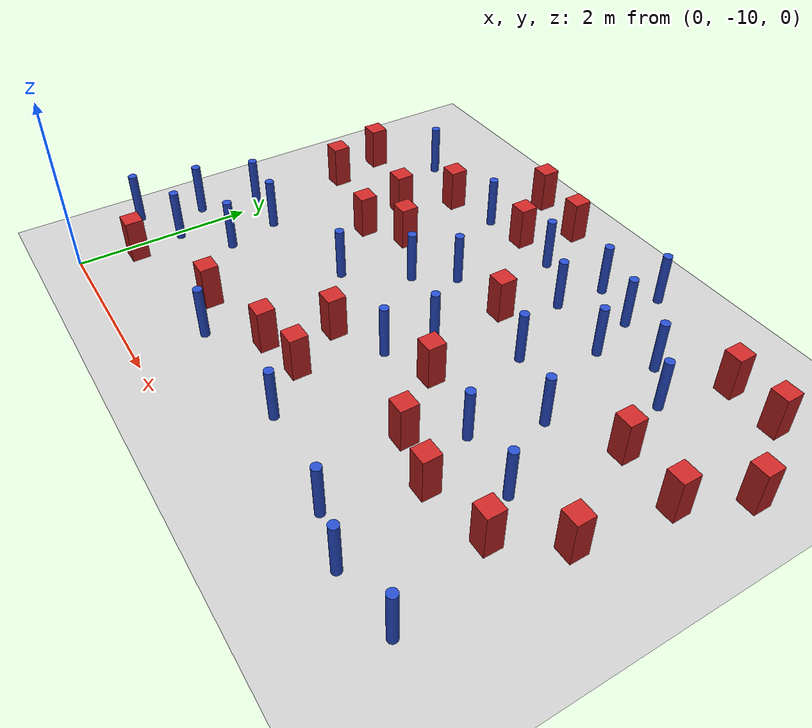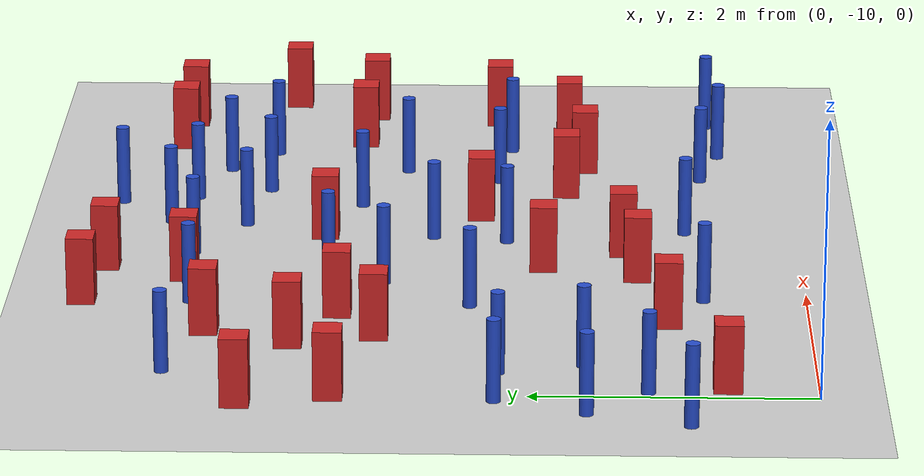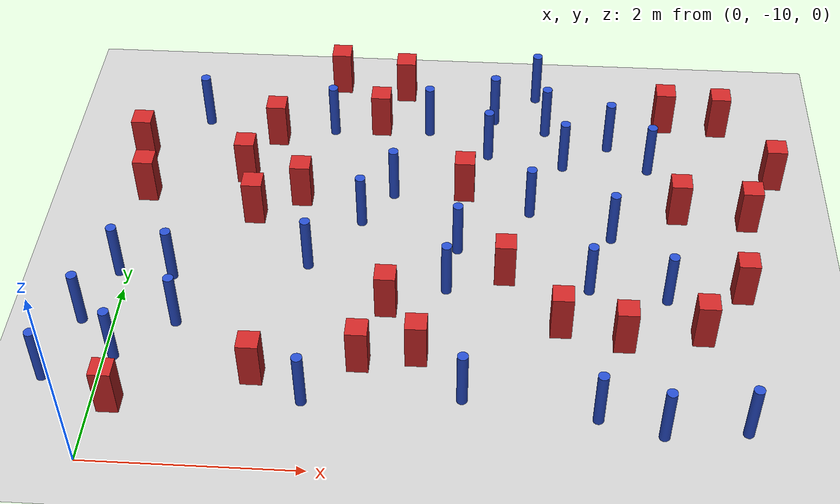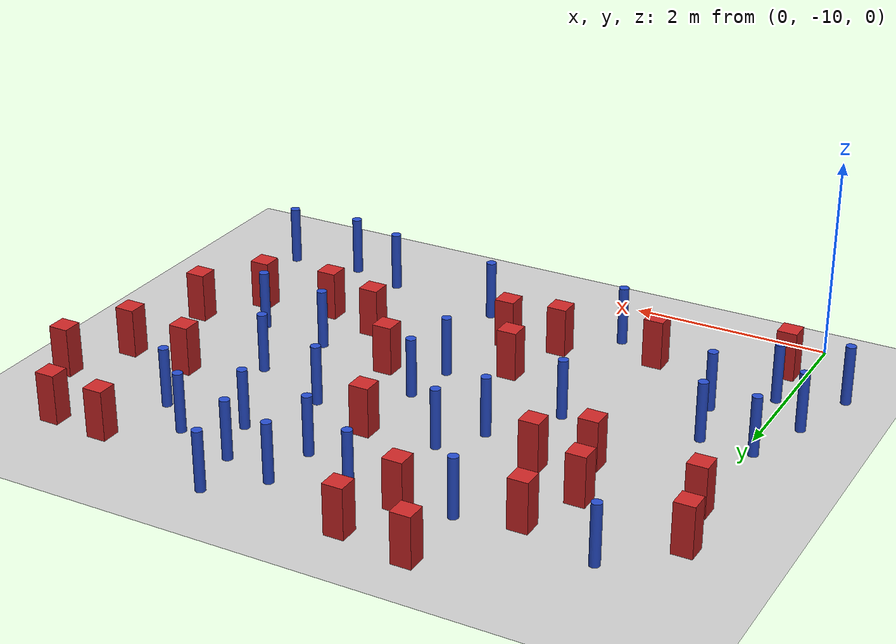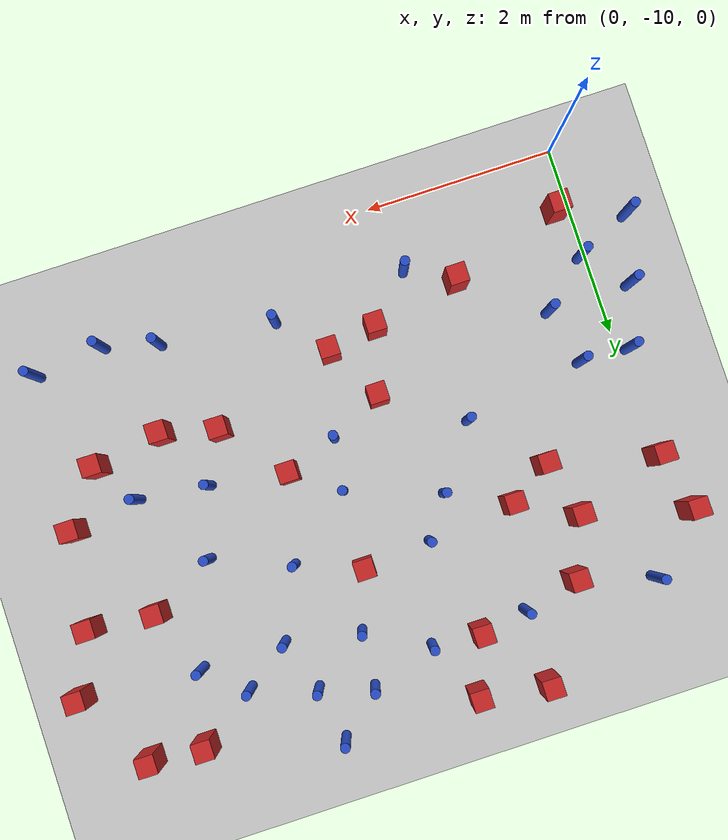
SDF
<sdf version="1.6">
 <world name="default">
  <model name="ground_plane">
   <static>1</static>
   <link name="link">
    <collision name="collision">
     <geometry><plane><normal>0 0 1</normal><size>100 100</size></plane></geometry>
     <surface><friction><ode><mu>100</mu><mu2>50</mu2></ode></friction></surface>
    </collision>
    <visual name="visual">
     <cast_shadows>0</cast_shadows>
     <geometry><plane><normal>0 0 1</normal><size>100 100</size></plane></geometry>
     <material>
      <ambient>1.0 1.0 1.0 1.0</ambient>
      <diffuse>0.8 0.8 0.8 1.0</diffuse>
      <specular>0.01 0.01 0.01 1.000000</specular>
     </material>
    </visual>
   </link>
  </model>
  <model name="square_post_obstacle17">
   <static>true</static>
   <pose>4.15785183296 -8.27256191377 1.91545236811e-07 -7.35059704564e-06 1.12565212e-07 2.39332434364e-05</pose>
   <link name="link">
    <pose>0 0 0.25 0 -0 0</pose>
    <inertial>
     <mass>100</mass>
     <inertia>
      <ixx>0.166667</ixx>
      <ixy>0</ixy>
      <ixz>0</ixz>
      <iyy>0.166667</iyy>
      <iyz>0</iyz>
      <izz>0.166667</izz>
     </inertia>
    </inertial>
    <collision name="collision"><geometry><box><size>.2 .2 .5</size></box></geometry></collision>
    <visual name="visual">
     <geometry><box><size>.2 .2 .5</size></box></geometry>
     <material>
      <script><name>Gazebo/Red</name><uri>file://media/materials/scripts/gazebo.material</uri></script>
     </material>
    </visual>
   </link>
  </model>
  <model name="square_post_obstacle24">
   <static>true</static>
   <pose>2.48874892233 -4.89453940041 1.91545236811e-07 -7.35059704564e-06 1.12565212e-07 2.39332434364e-05</pose>
   <link name="link">
    <pose>0 0 0.25 0 -0 0</pose>
    <inertial>
     <mass>100</mass>
     <inertia>
      <ixx>0.166667</ixx>
      <ixy>0</ixy>
      <ixz>0</ixz>
      <iyy>0.166667</iyy>
      <iyz>0</iyz>
      <izz>0.166667</izz>
     </inertia>
    </inertial>
    <collision name="collision"><geometry><box><size>.2 .2 .5</size></box></geometry></collision>
    <visual name="visual">
     <geometry><box><size>.2 .2 .5</size></box></geometry>
     <material>
      <script><name>Gazebo/Red</name><uri>file://media/materials/scripts/gazebo.material</uri></script>
     </material>
    </visual>
   </link>
  </model>
  <model name="pole_obstacle21">
   <static>true</static>
   <pose>3.2821513019 -9.15559063954 7.38925637345e-09 -8.47170692793e-08 1.24976764408e-08 -1.74513093041e-07</pose>
   <link name="link">
    <pose>0 0 0.3 0 -0 0</pose>
    <inertial>
     <mass>1</mass>
     <inertia><ixx>0.145833</ixx><ixy>0</ixy><ixz>0</ixz><iyy>0.145833</iyy><iyz>0</iyz><izz>0.125</izz></inertia>
    </inertial>
    <collision name="collision">
     <geometry><cylinder><radius>0.05</radius><length>.6</length></cylinder></geometry>
    </collision>
    <visual name="visual">
     <geometry><cylinder><radius>0.05</radius><length>.6</length></cylinder></geometry>
     <material>
      <script><name>Gazebo/Blue</name><uri>file://media/materials/scripts/gazebo.material</uri></script>
     </material>
    </visual>
   </link>
  </model>
  <model name="pole_obstacle22">
   <static>true</static>
   <pose>3.85461852948 -6.72539275594 7.38925637345e-09 -8.47170692798e-08 1.24976765033e-08 -1.74513093019e-07</pose>
   <link name="link">
    <pose>0 0 0.3 0 -0 0</pose>
    <inertial>
     <mass>1</mass>
     <inertia><ixx>0.145833</ixx><ixy>0</ixy><ixz>0</ixz><iyy>0.145833</iyy><iyz>0</iyz><izz>0.125</izz></inertia>
    </inertial>
    <collision name="collision">
     <geometry><cylinder><radius>0.05</radius><length>.6</length></cylinder></geometry>
    </collision>
    <visual name="visual">
     <geometry><cylinder><radius>0.05</radius><length>.6</length></cylinder></geometry>
     <material>
      <script><name>Gazebo/Blue</name><uri>file://media/materials/scripts/gazebo.material</uri></script>
     </material>
    </visual>
   </link>
  </model>
  <model name="pole_obstacle23">
   <static>true</static>
   <pose>1.71958289822 -7.57706437293 7.38925637345e-09 -8.47170692799e-08 1.24976765033e-08 -1.74513093018e-07</pose>
   <link name="link">
    <pose>0 0 0.3 0 -0 0</pose>
    <inertial>
     <mass>1</mass>
     <inertia><ixx>0.145833</ixx><ixy>0</ixy><ixz>0</ixz><iyy>0.145833</iyy><iyz>0</iyz><izz>0.125</izz></inertia>
    </inertial>
    <collision name="collision">
     <geometry><cylinder><radius>0.05</radius><length>.6</length></cylinder></geometry>
    </collision>
    <visual name="visual">
     <geometry><cylinder><radius>0.05</radius><length>.6</length></cylinder></geometry>
     <material>
      <script><name>Gazebo/Blue</name><uri>file://media/materials/scripts/gazebo.material</uri></script>
     </material>
    </visual>
   </link>
  </model>
  <model name="square_post_obstacle33">
   <static>true</static>
   <pose>5.46833458909 -8.29814705142 1.91545236811e-07 -7.35059704564e-06 1.12565212e-07 2.39332434364e-05</pose>
   <link name="link">
    <pose>0 0 0.25 0 -0 0</pose>
    <inertial>
     <mass>100</mass>
     <inertia>
      <ixx>0.166667</ixx>
      <ixy>0</ixy>
      <ixz>0</ixz>
      <iyy>0.166667</iyy>
      <iyz>0</iyz>
      <izz>0.166667</izz>
     </inertia>
    </inertial>
    <collision name="collision"><geometry><box><size>.2 .2 .5</size></box></geometry></collision>
    <visual name="visual">
     <geometry><box><size>.2 .2 .5</size></box></geometry>
     <material>
      <script><name>Gazebo/Red</name><uri>file://media/materials/scripts/gazebo.material</uri></script>
     </material>
    </visual>
   </link>
  </model>
  <model name="square_post_obstacle34">
   <static>true</static>
   <pose>1.18981005946 -5.70784908459 1.91545236811e-07 -7.35059704564e-06 1.12565212e-07 2.39332434364e-05</pose>
   <link name="link">
    <pose>0 0 0.25 0 -0 0</pose>
    <inertial>
     <mass>100</mass>
     <inertia>
      <ixx>0.166667</ixx>
      <ixy>0</ixy>
      <ixz>0</ixz>
      <iyy>0.166667</iyy>
      <iyz>0</iyz>
      <izz>0.166667</izz>
     </inertia>
    </inertial>
    <collision name="collision"><geometry><box><size>.2 .2 .5</size></box></geometry></collision>
    <visual name="visual">
     <geometry><box><size>.2 .2 .5</size></box></geometry>
     <material>
      <script><name>Gazebo/Red</name><uri>file://media/materials/scripts/gazebo.material</uri></script>
     </material>
    </visual>
   </link>
  </model>
  <model name="pole_obstacle32">
   <static>true</static>
   <pose>3.07451718425 -7.82963880934 7.38925637345e-09 -8.47170692798e-08 1.24976765033e-08 -1.74513093019e-07</pose>
   <link name="link">
    <pose>0 0 0.3 0 -0 0</pose>
    <inertial>
     <mass>1</mass>
     <inertia><ixx>0.145833</ixx><ixy>0</ixy><ixz>0</ixz><iyy>0.145833</iyy><iyz>0</iyz><izz>0.125</izz></inertia>
    </inertial>
    <collision name="collision">
     <geometry><cylinder><radius>0.05</radius><length>.6</length></cylinder></geometry>
    </collision>
    <visual name="visual">
     <geometry><cylinder><radius>0.05</radius><length>.6</length></cylinder></geometry>
     <material>
      <script><name>Gazebo/Blue</name><uri>file://media/materials/scripts/gazebo.material</uri></script>
     </material>
    </visual>
   </link>
  </model>
  <model name="pole_obstacle44">
   <static>true</static>
   <pose>0.0861160558332 -8.82764302675 7.38925637345e-09 -8.47170692797e-08 1.24976764742e-08 -1.74513093035e-07</pose>
   <link name="link">
    <pose>0 0 0.3 0 -0 0</pose>
    <inertial>
     <mass>1</mass>
     <inertia><ixx>0.145833</ixx><ixy>0</ixy><ixz>0</ixz><iyy>0.145833</iyy><iyz>0</iyz><izz>0.125</izz></inertia>
    </inertial>
    <collision name="collision">
     <geometry><cylinder><radius>0.05</radius><length>.6</length></cylinder></geometry>
    </collision>
    <visual name="visual">
     <geometry><cylinder><radius>0.05</radius><length>.6</length></cylinder></geometry>
     <material>
      <script><name>Gazebo/Blue</name><uri>file://media/materials/scripts/gazebo.material</uri></script>
     </material>
    </visual>
   </link>
  </model>
  <model name="pole_obstacle45">
   <static>true</static>
   <pose>0.434307333481 -7.79270988588 7.38925637345e-09 -8.471706928e-08 1.24976765079e-08 -1.74513093015e-07</pose>
   <link name="link">
    <pose>0 0 0.3 0 -0 0</pose>
    <inertial>
     <mass>1</mass>
     <inertia><ixx>0.145833</ixx><ixy>0</ixy><ixz>0</ixz><iyy>0.145833</iyy><iyz>0</iyz><izz>0.125</izz></inertia>
    </inertial>
    <collision name="collision">
     <geometry><cylinder><radius>0.05</radius><length>.6</length></cylinder></geometry>
    </collision>
    <visual name="visual">
     <geometry><cylinder><radius>0.05</radius><length>.6</length></cylinder></geometry>
     <material>
      <script><name>Gazebo/Blue</name><uri>file://media/materials/scripts/gazebo.material</uri></script>
     </material>
    </visual>
   </link>
  </model>
  <model name="square_post_obstacle45">
   <static>true</static>
   <pose>4.73870761755 -8.41685095977 1.91545236811e-07 -7.35059704564e-06 1.12565212e-07 2.39332434364e-05</pose>
   <link name="link">
    <pose>0 0 0.25 0 -0 0</pose>
    <inertial>
     <mass>100</mass>
     <inertia>
      <ixx>0.166667</ixx>
      <ixy>0</ixy>
      <ixz>0</ixz>
      <iyy>0.166667</iyy>
      <iyz>0</iyz>
      <izz>0.166667</izz>
     </inertia>
    </inertial>
    <collision name="collision"><geometry><box><size>.2 .2 .5</size></box></geometry></collision>
    <visual name="visual">
     <geometry><box><size>.2 .2 .5</size></box></geometry>
     <material>
      <script><name>Gazebo/Red</name><uri>file://media/materials/scripts/gazebo.material</uri></script>
     </material>
    </visual>
   </link>
  </model>
  <model name="pole_obstacle49">
   <static>true</static>
   <pose>3.15505255902 -7.28465261312 7.38925637345e-09 -8.47170692798e-08 1.24976765033e-08 -1.74513093019e-07</pose>
   <link name="link">
    <pose>0 0 0.3 0 -0 0</pose>
    <inertial>
     <mass>1</mass>
     <inertia><ixx>0.145833</ixx><ixy>0</ixy><ixz>0</ixz><iyy>0.145833</iyy><iyz>0</iyz><izz>0.125</izz></inertia>
    </inertial>
    <collision name="collision">
     <geometry><cylinder><radius>0.05</radius><length>.6</length></cylinder></geometry>
    </collision>
    <visual name="visual">
     <geometry><cylinder><radius>0.05</radius><length>.6</length></cylinder></geometry>
     <material>
      <script><name>Gazebo/Blue</name><uri>file://media/materials/scripts/gazebo.material</uri></script>
     </material>
    </visual>
   </link>
  </model>
  <model name="square_post_obstacle52">
   <static>true</static>
   <pose>6.31727761638 -6.11788817503 1.91545236811e-07 -7.35059704564e-06 1.12565212e-07 2.39332434364e-05</pose>
   <link name="link">
    <pose>0 0 0.25 0 -0 0</pose>
    <inertial>
     <mass>100</mass>
     <inertia>
      <ixx>0.166667</ixx>
      <ixy>0</ixy>
      <ixz>0</ixz>
      <iyy>0.166667</iyy>
      <iyz>0</iyz>
      <izz>0.166667</izz>
     </inertia>
    </inertial>
    <collision name="collision"><geometry><box><size>.2 .2 .5</size></box></geometry></collision>
    <visual name="visual">
     <geometry><box><size>.2 .2 .5</size></box></geometry>
     <material>
      <script><name>Gazebo/Red</name><uri>file://media/materials/scripts/gazebo.material</uri></script>
     </material>
    </visual>
   </link>
  </model>
  <model name="pole_obstacle54">
   <static>true</static>
   <pose>3.90100786367 -4.89600592577 7.38925637345e-09 -8.47170692798e-08 1.24976765033e-08 -1.74513093019e-07</pose>
   <link name="link">
    <pose>0 0 0.3 0 -0 0</pose>
    <inertial>
     <mass>1</mass>
     <inertia><ixx>0.145833</ixx><ixy>0</ixy><ixz>0</ixz><iyy>0.145833</iyy><iyz>0</iyz><izz>0.125</izz></inertia>
    </inertial>
    <collision name="collision">
     <geometry><cylinder><radius>0.05</radius><length>.6</length></cylinder></geometry>
    </collision>
    <visual name="visual">
     <geometry><cylinder><radius>0.05</radius><length>.6</length></cylinder></geometry>
     <material>
      <script><name>Gazebo/Blue</name><uri>file://media/materials/scripts/gazebo.material</uri></script>
     </material>
    </visual>
   </link>
  </model>
  <model name="square_post_obstacle60">
   <static>true</static>
   <pose>2.26597551009 -5.48836966018 1.91545236811e-07 -7.35059704564e-06 1.12565212e-07 2.39332434364e-05</pose>
   <link name="link">
    <pose>0 0 0.25 0 -0 0</pose>
    <inertial>
     <mass>100</mass>
     <inertia>
      <ixx>0.166667</ixx>
      <ixy>0</ixy>
      <ixz>0</ixz>
      <iyy>0.166667</iyy>
      <iyz>0</iyz>
      <izz>0.166667</izz>
     </inertia>
    </inertial>
    <collision name="collision"><geometry><box><size>.2 .2 .5</size></box></geometry></collision>
    <visual name="visual">
     <geometry><box><size>.2 .2 .5</size></box></geometry>
     <material>
      <script><name>Gazebo/Red</name><uri>file://media/materials/scripts/gazebo.material</uri></script>
     </material>
    </visual>
   </link>
  </model>
  <model name="pole_obstacle57">
   <static>true</static>
   <pose>4.18999094337 -6.00876247034 7.38925637345e-09 -8.47170692796e-08 1.24976764786e-08 -1.74513093032e-07</pose>
   <link name="link">
    <pose>0 0 0.3 0 -0 0</pose>
    <inertial>
     <mass>1</mass>
     <inertia><ixx>0.145833</ixx><ixy>0</ixy><ixz>0</ixz><iyy>0.145833</iyy><iyz>0</iyz><izz>0.125</izz></inertia>
    </inertial>
    <collision name="collision">
     <geometry><cylinder><radius>0.05</radius><length>.6</length></cylinder></geometry>
    </collision>
    <visual name="visual">
     <geometry><cylinder><radius>0.05</radius><length>.6</length></cylinder></geometry>
     <material>
      <script><name>Gazebo/Blue</name><uri>file://media/materials/scripts/gazebo.material</uri></script>
     </material>
    </visual>
   </link>
  </model>
  <model name="square_post_obstacle61">
   <static>true</static>
   <pose>-0.01868318585 -6.64363689225 1.91545236811e-07 -7.35059704564e-06 1.12565212e-07 2.39332434364e-05</pose>
   <link name="link">
    <pose>0 0 0.25 0 -0 0</pose>
    <inertial>
     <mass>100</mass>
     <inertia>
      <ixx>0.166667</ixx>
      <ixy>0</ixy>
      <ixz>0</ixz>
      <iyy>0.166667</iyy>
      <iyz>0</iyz>
      <izz>0.166667</izz>
     </inertia>
    </inertial>
    <collision name="collision"><geometry><box><size>.2 .2 .5</size></box></geometry></collision>
    <visual name="visual">
     <geometry><box><size>.2 .2 .5</size></box></geometry>
     <material>
      <script><name>Gazebo/Red</name><uri>file://media/materials/scripts/gazebo.material</uri></script>
     </material>
    </visual>
   </link>
  </model>
  <model name="pole_obstacle62">
   <static>true</static>
   <pose>5.78178929877 -9.38186354014 7.38925637345e-09 -8.471706928e-08 1.24976765081e-08 -1.74513093015e-07</pose>
   <link name="link">
    <pose>0 0 0.3 0 -0 0</pose>
    <inertial>
     <mass>1</mass>
     <inertia><ixx>0.145833</ixx><ixy>0</ixy><ixz>0</ixz><iyy>0.145833</iyy><iyz>0</iyz><izz>0.125</izz></inertia>
    </inertial>
    <collision name="collision">
     <geometry><cylinder><radius>0.05</radius><length>.6</length></cylinder></geometry>
    </collision>
    <visual name="visual">
     <geometry><cylinder><radius>0.05</radius><length>.6</length></cylinder></geometry>
     <material>
      <script><name>Gazebo/Blue</name><uri>file://media/materials/scripts/gazebo.material</uri></script>
     </material>
    </visual>
   </link>
  </model>
  <model name="pole_obstacle65">
   <static>true</static>
   <pose>4.66340418919 -7.04947778425 7.38925637345e-09 -8.47170692796e-08 1.24976764786e-08 -1.74513093032e-07</pose>
   <link name="link">
    <pose>0 0 0.3 0 -0 0</pose>
    <inertial>
     <mass>1</mass>
     <inertia><ixx>0.145833</ixx><ixy>0</ixy><ixz>0</ixz><iyy>0.145833</iyy><iyz>0</iyz><izz>0.125</izz></inertia>
    </inertial>
    <collision name="collision">
     <geometry><cylinder><radius>0.05</radius><length>.6</length></cylinder></geometry>
    </collision>
    <visual name="visual">
     <geometry><cylinder><radius>0.05</radius><length>.6</length></cylinder></geometry>
     <material>
      <script><name>Gazebo/Blue</name><uri>file://media/materials/scripts/gazebo.material</uri></script>
     </material>
    </visual>
   </link>
  </model>
  <model name="pole_obstacle83">
   <static>true</static>
   <pose>4.4836316088 -9.30578332304 7.38925637345e-09 -8.471706928e-08 1.24976765081e-08 -1.74513093015e-07</pose>
   <link name="link">
    <pose>0 0 0.3 0 -0 0</pose>
    <inertial>
     <mass>1</mass>
     <inertia><ixx>0.145833</ixx><ixy>0</ixy><ixz>0</ixz><iyy>0.145833</iyy><iyz>0</iyz><izz>0.125</izz></inertia>
    </inertial>
    <collision name="collision">
     <geometry><cylinder><radius>0.05</radius><length>.6</length></cylinder></geometry>
    </collision>
    <visual name="visual">
     <geometry><cylinder><radius>0.05</radius><length>.6</length></cylinder></geometry>
     <material>
      <script><name>Gazebo/Blue</name><uri>file://media/materials/scripts/gazebo.material</uri></script>
     </material>
    </visual>
   </link>
  </model>
  <model name="pole_obstacle96">
   <static>true</static>
   <pose>1.76932864099 -5.56148229161 7.38925637345e-09 -8.47170692799e-08 1.24976765033e-08 -1.74513093018e-07</pose>
   <link name="link">
    <pose>0 0 0.3 0 -0 0</pose>
    <inertial>
     <mass>1</mass>
     <inertia><ixx>0.145833</ixx><ixy>0</ixy><ixz>0</ixz><iyy>0.145833</iyy><iyz>0</iyz><izz>0.125</izz></inertia>
    </inertial>
    <collision name="collision">
     <geometry><cylinder><radius>0.05</radius><length>.6</length></cylinder></geometry>
    </collision>
    <visual name="visual">
     <geometry><cylinder><radius>0.05</radius><length>.6</length></cylinder></geometry>
     <material>
      <script><name>Gazebo/Blue</name><uri>file://media/materials/scripts/gazebo.material</uri></script>
     </material>
    </visual>
   </link>
  </model>
  <model name="pole_obstacle100">
   <static>true</static>
   <pose>4.66208026343 -5.67378600935 7.38925637345e-09 -8.47170692796e-08 1.24976764786e-08 -1.74513093032e-07</pose>
   <link name="link">
    <pose>0 0 0.3 0 -0 0</pose>
    <inertial>
     <mass>1</mass>
     <inertia><ixx>0.145833</ixx><ixy>0</ixy><ixz>0</ixz><iyy>0.145833</iyy><iyz>0</iyz><izz>0.125</izz></inertia>
    </inertial>
    <collision name="collision">
     <geometry><cylinder><radius>0.05</radius><length>.6</length></cylinder></geometry>
    </collision>
    <visual name="visual">
     <geometry><cylinder><radius>0.05</radius><length>.6</length></cylinder></geometry>
     <material>
      <script><name>Gazebo/Blue</name><uri>file://media/materials/scripts/gazebo.material</uri></script>
     </material>
    </visual>
   </link>
  </model>
  <model name="square_post_obstacle88">
   <static>true</static>
   <pose>5.88040139301 -7.74595541153 1.91545236811e-07 -7.35059704564e-06 1.12565212e-07 2.39332434364e-05</pose>
   <link name="link">
    <pose>0 0 0.25 0 -0 0</pose>
    <inertial>
     <mass>100</mass>
     <inertia>
      <ixx>0.166667</ixx>
      <ixy>0</ixy>
      <ixz>0</ixz>
      <iyy>0.166667</iyy>
      <iyz>0</iyz>
      <izz>0.166667</izz>
     </inertia>
    </inertial>
    <collision name="collision"><geometry><box><size>.2 .2 .5</size></box></geometry></collision>
    <visual name="visual">
     <geometry><box><size>.2 .2 .5</size></box></geometry>
     <material>
      <script><name>Gazebo/Red</name><uri>file://media/materials/scripts/gazebo.material</uri></script>
     </material>
    </visual>
   </link>
  </model>
  <model name="square_post_obstacle91">
   <static>true</static>
   <pose>3.189183629 -6.47401037486 1.91545236811e-07 -7.35059704564e-06 1.12565212e-07 2.39332434364e-05</pose>
   <link name="link">
    <pose>0 0 0.25 0 -0 0</pose>
    <inertial>
     <mass>100</mass>
     <inertia>
      <ixx>0.166667</ixx>
      <ixy>0</ixy>
      <ixz>0</ixz>
      <iyy>0.166667</iyy>
      <iyz>0</iyz>
      <izz>0.166667</izz>
     </inertia>
    </inertial>
    <collision name="collision"><geometry><box><size>.2 .2 .5</size></box></geometry></collision>
    <visual name="visual">
     <geometry><box><size>.2 .2 .5</size></box></geometry>
     <material>
      <script><name>Gazebo/Red</name><uri>file://media/materials/scripts/gazebo.material</uri></script>
     </material>
    </visual>
   </link>
  </model>
  <model name="square_post_obstacle95">
   <static>true</static>
   <pose>1.38777817298 -8.98900119935 1.91545236811e-07 -7.35059704564e-06 1.12565212e-07 2.39332434364e-05</pose>
   <link name="link">
    <pose>0 0 0.25 0 -0 0</pose>
    <inertial>
     <mass>100</mass>
     <inertia>
      <ixx>0.166667</ixx>
      <ixy>0</ixy>
      <ixz>0</ixz>
      <iyy>0.166667</iyy>
      <iyz>0</iyz>
      <izz>0.166667</izz>
     </inertia>
    </inertial>
    <collision name="collision"><geometry><box><size>.2 .2 .5</size></box></geometry></collision>
    <visual name="visual">
     <geometry><box><size>.2 .2 .5</size></box></geometry>
     <material>
      <script><name>Gazebo/Red</name><uri>file://media/materials/scripts/gazebo.material</uri></script>
     </material>
    </visual>
   </link>
  </model>
  <model name="square_post_obstacle96">
   <static>true</static>
   <pose>2.84689971885 -8.68989378921 1.91545236811e-07 -7.35059704564e-06 1.12565212e-07 2.39332434364e-05</pose>
   <link name="link">
    <pose>0 0 0.25 0 -0 0</pose>
    <inertial>
     <mass>100</mass>
     <inertia>
      <ixx>0.166667</ixx>
      <ixy>0</ixy>
      <ixz>0</ixz>
      <iyy>0.166667</iyy>
      <iyz>0</iyz>
      <izz>0.166667</izz>
     </inertia>
    </inertial>
    <collision name="collision"><geometry><box><size>.2 .2 .5</size></box></geometry></collision>
    <visual name="visual">
     <geometry><box><size>.2 .2 .5</size></box></geometry>
     <material>
      <script><name>Gazebo/Red</name><uri>file://media/materials/scripts/gazebo.material</uri></script>
     </material>
    </visual>
   </link>
  </model>
  <model name="pole_obstacle110">
   <static>true</static>
   <pose>0.410652799768 -5.47015777811 7.38925637345e-09 -8.471706928e-08 1.24976765079e-08 -1.74513093015e-07</pose>
   <link name="link">
    <pose>0 0 0.3 0 -0 0</pose>
    <inertial>
     <mass>1</mass>
     <inertia><ixx>0.145833</ixx><ixy>0</ixy><ixz>0</ixz><iyy>0.145833</iyy><iyz>0</iyz><izz>0.125</izz></inertia>
    </inertial>
    <collision name="collision">
     <geometry><cylinder><radius>0.05</radius><length>.6</length></cylinder></geometry>
    </collision>
    <visual name="visual">
     <geometry><cylinder><radius>0.05</radius><length>.6</length></cylinder></geometry>
     <material>
      <script><name>Gazebo/Blue</name><uri>file://media/materials/scripts/gazebo.material</uri></script>
     </material>
    </visual>
   </link>
  </model>
  <model name="square_post_obstacle102">
   <static>true</static>
   <pose>6.01664708034 -6.75587740089 1.91545236811e-07 -7.35059704564e-06 1.12565212e-07 2.39332434364e-05</pose>
   <link name="link">
    <pose>0 0 0.25 0 -0 0</pose>
    <inertial>
     <mass>100</mass>
     <inertia>
      <ixx>0.166667</ixx>
      <ixy>0</ixy>
      <ixz>0</ixz>
      <iyy>0.166667</iyy>
      <iyz>0</iyz>
      <izz>0.166667</izz>
     </inertia>
    </inertial>
    <collision name="collision"><geometry><box><size>.2 .2 .5</size></box></geometry></collision>
    <visual name="visual">
     <geometry><box><size>.2 .2 .5</size></box></geometry>
     <material>
      <script><name>Gazebo/Red</name><uri>file://media/materials/scripts/gazebo.material</uri></script>
     </material>
    </visual>
   </link>
  </model>
  <model name="square_post_obstacle105">
   <static>true</static>
   <pose>2.52196008538 -8.10216828916 1.91545236811e-07 -7.35059704564e-06 1.12565212e-07 2.39332434364e-05</pose>
   <link name="link">
    <pose>0 0 0.25 0 -0 0</pose>
    <inertial>
     <mass>100</mass>
     <inertia>
      <ixx>0.166667</ixx>
      <ixy>0</ixy>
      <ixz>0</ixz>
      <iyy>0.166667</iyy>
      <iyz>0</iyz>
      <izz>0.166667</izz>
     </inertia>
    </inertial>
    <collision name="collision"><geometry><box><size>.2 .2 .5</size></box></geometry></collision>
    <visual name="visual">
     <geometry><box><size>.2 .2 .5</size></box></geometry>
     <material>
      <script><name>Gazebo/Red</name><uri>file://media/materials/scripts/gazebo.material</uri></script>
     </material>
    </visual>
   </link>
  </model>
  <model name="pole_obstacle127">
   <static>true</static>
   <pose>2.47527180235 -6.52860284117 7.38925637345e-09 -8.47170692798e-08 1.24976765033e-08 -1.74513093019e-07</pose>
   <link name="link">
    <pose>0 0 0.3 0 -0 0</pose>
    <inertial>
     <mass>1</mass>
     <inertia><ixx>0.145833</ixx><ixy>0</ixy><ixz>0</ixz><iyy>0.145833</iyy><iyz>0</iyz><izz>0.125</izz></inertia>
    </inertial>
    <collision name="collision">
     <geometry><cylinder><radius>0.05</radius><length>.6</length></cylinder></geometry>
    </collision>
    <visual name="visual">
     <geometry><cylinder><radius>0.05</radius><length>.6</length></cylinder></geometry>
     <material>
      <script><name>Gazebo/Blue</name><uri>file://media/materials/scripts/gazebo.material</uri></script>
     </material>
    </visual>
   </link>
  </model>
  <model name="pole_obstacle129">
   <static>true</static>
   <pose>-0.0849867156135 -7.77132868973 7.38925637345e-09 -8.47170692799e-08 1.24976765047e-08 -1.74513093018e-07</pose>
   <link name="link">
    <pose>0 0 0.3 0 -0 0</pose>
    <inertial>
     <mass>1</mass>
     <inertia><ixx>0.145833</ixx><ixy>0</ixy><ixz>0</ixz><iyy>0.145833</iyy><iyz>0</iyz><izz>0.125</izz></inertia>
    </inertial>
    <collision name="collision">
     <geometry><cylinder><radius>0.05</radius><length>.6</length></cylinder></geometry>
    </collision>
    <visual name="visual">
     <geometry><cylinder><radius>0.05</radius><length>.6</length></cylinder></geometry>
     <material>
      <script><name>Gazebo/Blue</name><uri>file://media/materials/scripts/gazebo.material</uri></script>
     </material>
    </visual>
   </link>
  </model>
  <model name="pole_obstacle131">
   <static>true</static>
   <pose>2.18354928799 -6.94450361111 7.38925637345e-09 -8.47170692798e-08 1.24976765033e-08 -1.74513093019e-07</pose>
   <link name="link">
    <pose>0 0 0.3 0 -0 0</pose>
    <inertial>
     <mass>1</mass>
     <inertia><ixx>0.145833</ixx><ixy>0</ixy><ixz>0</ixz><iyy>0.145833</iyy><iyz>0</iyz><izz>0.125</izz></inertia>
    </inertial>
    <collision name="collision">
     <geometry><cylinder><radius>0.05</radius><length>.6</length></cylinder></geometry>
    </collision>
    <visual name="visual">
     <geometry><cylinder><radius>0.05</radius><length>.6</length></cylinder></geometry>
     <material>
      <script><name>Gazebo/Blue</name><uri>file://media/materials/scripts/gazebo.material</uri></script>
     </material>
    </visual>
   </link>
  </model>
  <model name="pole_obstacle132">
   <static>true</static>
   <pose>4.00531018259 -5.46140039815 7.38925637345e-09 -8.47170692796e-08 1.24976764793e-08 -1.74513093032e-07</pose>
   <link name="link">
    <pose>0 0 0.3 0 -0 0</pose>
    <inertial>
     <mass>1</mass>
     <inertia><ixx>0.145833</ixx><ixy>0</ixy><ixz>0</ixz><iyy>0.145833</iyy><iyz>0</iyz><izz>0.125</izz></inertia>
    </inertial>
    <collision name="collision">
     <geometry><cylinder><radius>0.05</radius><length>.6</length></cylinder></geometry>
    </collision>
    <visual name="visual">
     <geometry><cylinder><radius>0.05</radius><length>.6</length></cylinder></geometry>
     <material>
      <script><name>Gazebo/Blue</name><uri>file://media/materials/scripts/gazebo.material</uri></script>
     </material>
    </visual>
   </link>
  </model>
  <model name="square_post_obstacle141">
   <static>true</static>
   <pose>-0.16210854065 -6.01844192854 1.91545236811e-07 -7.35059704564e-06 1.12565212e-07 2.39332434364e-05</pose>
   <link name="link">
    <pose>0 0 0.25 0 -0 0</pose>
    <inertial>
     <mass>100</mass>
     <inertia>
      <ixx>0.166667</ixx>
      <ixy>0</ixy>
      <ixz>0</ixz>
      <iyy>0.166667</iyy>
      <iyz>0</iyz>
      <izz>0.166667</izz>
     </inertia>
    </inertial>
    <collision name="collision"><geometry><box><size>.2 .2 .5</size></box></geometry></collision>
    <visual name="visual">
     <geometry><box><size>.2 .2 .5</size></box></geometry>
     <material>
      <script><name>Gazebo/Red</name><uri>file://media/materials/scripts/gazebo.material</uri></script>
     </material>
    </visual>
   </link>
  </model>
  <model name="square_post_obstacle148">
   <static>true</static>
   <pose>5.25422848731 -5.27414157081 1.91545236811e-07 -7.35059704564e-06 1.12565212e-07 2.39332434364e-05</pose>
   <link name="link">
    <pose>0 0 0.25 0 -0 0</pose>
    <inertial>
     <mass>100</mass>
     <inertia>
      <ixx>0.166667</ixx>
      <ixy>0</ixy>
      <ixz>0</ixz>
      <iyy>0.166667</iyy>
      <iyz>0</iyz>
      <izz>0.166667</izz>
     </inertia>
    </inertial>
    <collision name="collision"><geometry><box><size>.2 .2 .5</size></box></geometry></collision>
    <visual name="visual">
     <geometry><box><size>.2 .2 .5</size></box></geometry>
     <material>
      <script><name>Gazebo/Red</name><uri>file://media/materials/scripts/gazebo.material</uri></script>
     </material>
    </visual>
   </link>
  </model>
  <model name="square_post_obstacle150">
   <static>true</static>
   <pose>5.82593569777 -5.31016737916 1.91545236811e-07 -7.35059704564e-06 1.12565212e-07 2.39332434364e-05</pose>
   <link name="link">
    <pose>0 0 0.25 0 -0 0</pose>
    <inertial>
     <mass>100</mass>
     <inertia>
      <ixx>0.166667</ixx>
      <ixy>0</ixy>
      <ixz>0</ixz>
      <iyy>0.166667</iyy>
      <iyz>0</iyz>
      <izz>0.166667</izz>
     </inertia>
    </inertial>
    <collision name="collision"><geometry><box><size>.2 .2 .5</size></box></geometry></collision>
    <visual name="visual">
     <geometry><box><size>.2 .2 .5</size></box></geometry>
     <material>
      <script><name>Gazebo/Red</name><uri>file://media/materials/scripts/gazebo.material</uri></script>
     </material>
    </visual>
   </link>
  </model>
  <model name="square_post_obstacle153">
   <static>true</static>
   <pose>2.32500937096 -8.78696110378 1.91545236811e-07 -7.35059704564e-06 1.12565212e-07 2.39332434364e-05</pose>
   <link name="link">
    <pose>0 0 0.25 0 -0 0</pose>
    <inertial>
     <mass>100</mass>
     <inertia>
      <ixx>0.166667</ixx>
      <ixy>0</ixy>
      <ixz>0</ixz>
      <iyy>0.166667</iyy>
      <iyz>0</iyz>
      <izz>0.166667</izz>
     </inertia>
    </inertial>
    <collision name="collision"><geometry><box><size>.2 .2 .5</size></box></geometry></collision>
    <visual name="visual">
     <geometry><box><size>.2 .2 .5</size></box></geometry>
     <material>
      <script><name>Gazebo/Red</name><uri>file://media/materials/scripts/gazebo.material</uri></script>
     </material>
    </visual>
   </link>
  </model>
  <model name="pole_obstacle160">
   <static>true</static>
   <pose>5.05029170669 -9.45666490894 7.38925637345e-09 -8.471706928e-08 1.24976765081e-08 -1.74513093015e-07</pose>
   <link name="link">
    <pose>0 0 0.3 0 -0 0</pose>
    <inertial>
     <mass>1</mass>
     <inertia><ixx>0.145833</ixx><ixy>0</ixy><ixz>0</ixz><iyy>0.145833</iyy><iyz>0</iyz><izz>0.125</izz></inertia>
    </inertial>
    <collision name="collision">
     <geometry><cylinder><radius>0.05</radius><length>.6</length></cylinder></geometry>
    </collision>
    <visual name="visual">
     <geometry><cylinder><radius>0.05</radius><length>.6</length></cylinder></geometry>
     <material>
      <script><name>Gazebo/Blue</name><uri>file://media/materials/scripts/gazebo.material</uri></script>
     </material>
    </visual>
   </link>
  </model>
  <model name="square_post_obstacle158">
   <static>true</static>
   <pose>5.32992251936 -6.6910341316 1.91545236811e-07 -7.35059704564e-06 1.12565212e-07 2.39332434364e-05</pose>
   <link name="link">
    <pose>0 0 0.25 0 -0 0</pose>
    <inertial>
     <mass>100</mass>
     <inertia>
      <ixx>0.166667</ixx>
      <ixy>0</ixy>
      <ixz>0</ixz>
      <iyy>0.166667</iyy>
      <iyz>0</iyz>
      <izz>0.166667</izz>
     </inertia>
    </inertial>
    <collision name="collision"><geometry><box><size>.2 .2 .5</size></box></geometry></collision>
    <visual name="visual">
     <geometry><box><size>.2 .2 .5</size></box></geometry>
     <material>
      <script><name>Gazebo/Red</name><uri>file://media/materials/scripts/gazebo.material</uri></script>
     </material>
    </visual>
   </link>
  </model>
  <model name="pole_obstacle174">
   <static>true</static>
   <pose>2.77835072425 -5.51725847302 7.38925637345e-09 -8.47170692798e-08 1.24976765033e-08 -1.74513093019e-07</pose>
   <link name="link">
    <pose>0 0 0.3 0 -0 0</pose>
    <inertial>
     <mass>1</mass>
     <inertia><ixx>0.145833</ixx><ixy>0</ixy><ixz>0</ixz><iyy>0.145833</iyy><iyz>0</iyz><izz>0.125</izz></inertia>
    </inertial>
    <collision name="collision">
     <geometry><cylinder><radius>0.05</radius><length>.6</length></cylinder></geometry>
    </collision>
    <visual name="visual">
     <geometry><cylinder><radius>0.05</radius><length>.6</length></cylinder></geometry>
     <material>
      <script><name>Gazebo/Blue</name><uri>file://media/materials/scripts/gazebo.material</uri></script>
     </material>
    </visual>
   </link>
  </model>
  <model name="square_post_obstacle165">
   <static>true</static>
   <pose>1.78002951234 -4.78432560402 1.91545236811e-07 -7.35059704564e-06 1.12565212e-07 2.39332434364e-05</pose>
   <link name="link">
    <pose>0 0 0.25 0 -0 0</pose>
    <inertial>
     <mass>100</mass>
     <inertia>
      <ixx>0.166667</ixx>
      <ixy>0</ixy>
      <ixz>0</ixz>
      <iyy>0.166667</iyy>
      <iyz>0</iyz>
      <izz>0.166667</izz>
     </inertia>
    </inertial>
    <collision name="collision"><geometry><box><size>.2 .2 .5</size></box></geometry></collision>
    <visual name="visual">
     <geometry><box><size>.2 .2 .5</size></box></geometry>
     <material>
      <script><name>Gazebo/Red</name><uri>file://media/materials/scripts/gazebo.material</uri></script>
     </material>
    </visual>
   </link>
  </model>
  <model name="pole_obstacle181">
   <static>true</static>
   <pose>4.43425275864 -7.76209206483 7.38925637345e-09 -8.47170692796e-08 1.24976764786e-08 -1.74513093032e-07</pose>
   <link name="link">
    <pose>0 0 0.3 0 -0 0</pose>
    <inertial>
     <mass>1</mass>
     <inertia><ixx>0.145833</ixx><ixy>0</ixy><ixz>0</ixz><iyy>0.145833</iyy><iyz>0</iyz><izz>0.125</izz></inertia>
    </inertial>
    <collision name="collision">
     <geometry><cylinder><radius>0.05</radius><length>.6</length></cylinder></geometry>
    </collision>
    <visual name="visual">
     <geometry><cylinder><radius>0.05</radius><length>.6</length></cylinder></geometry>
     <material>
      <script><name>Gazebo/Blue</name><uri>file://media/materials/scripts/gazebo.material</uri></script>
     </material>
    </visual>
   </link>
  </model>
  <model name="pole_obstacle184">
   <static>true</static>
   <pose>3.46023722597 -5.29904955527 7.38925637345e-09 -8.47170692798e-08 1.24976765033e-08 -1.74513093019e-07</pose>
   <link name="link">
    <pose>0 0 0.3 0 -0 0</pose>
    <inertial>
     <mass>1</mass>
     <inertia><ixx>0.145833</ixx><ixy>0</ixy><ixz>0</ixz><iyy>0.145833</iyy><iyz>0</iyz><izz>0.125</izz></inertia>
    </inertial>
    <collision name="collision">
     <geometry><cylinder><radius>0.05</radius><length>.6</length></cylinder></geometry>
    </collision>
    <visual name="visual">
     <geometry><cylinder><radius>0.05</radius><length>.6</length></cylinder></geometry>
     <material>
      <script><name>Gazebo/Blue</name><uri>file://media/materials/scripts/gazebo.material</uri></script>
     </material>
    </visual>
   </link>
  </model>
  <model name="pole_obstacle186">
   <static>true</static>
   <pose>1.85946733437 -9.25517356014 7.38925637345e-09 -8.47170692798e-08 1.24976764881e-08 -1.74513093027e-07</pose>
   <link name="link">
    <pose>0 0 0.3 0 -0 0</pose>
    <inertial>
     <mass>1</mass>
     <inertia><ixx>0.145833</ixx><ixy>0</ixy><ixz>0</ixz><iyy>0.145833</iyy><iyz>0</iyz><izz>0.125</izz></inertia>
    </inertial>
    <collision name="collision">
     <geometry><cylinder><radius>0.05</radius><length>.6</length></cylinder></geometry>
    </collision>
    <visual name="visual">
     <geometry><cylinder><radius>0.05</radius><length>.6</length></cylinder></geometry>
     <material>
      <script><name>Gazebo/Blue</name><uri>file://media/materials/scripts/gazebo.material</uri></script>
     </material>
    </visual>
   </link>
  </model>
  <model name="square_post_obstacle184">
   <static>true</static>
   <pose>0.174560400594 -9.37112699984 1.91545236811e-07 -7.35059704564e-06 1.12565212e-07 2.39332434364e-05</pose>
   <link name="link">
    <pose>0 0 0.25 0 -0 0</pose>
    <inertial>
     <mass>100</mass>
     <inertia>
      <ixx>0.166667</ixx>
      <ixy>0</ixy>
      <ixz>0</ixz>
      <iyy>0.166667</iyy>
      <iyz>0</iyz>
      <izz>0.166667</izz>
     </inertia>
    </inertial>
    <collision name="collision"><geometry><box><size>.2 .2 .5</size></box></geometry></collision>
    <visual name="visual">
     <geometry><box><size>.2 .2 .5</size></box></geometry>
     <material>
      <script><name>Gazebo/Red</name><uri>file://media/materials/scripts/gazebo.material</uri></script>
     </material>
    </visual>
   </link>
  </model>
  <model name="square_post_obstacle199">
   <static>true</static>
   <pose>1.55298371191 -6.6337183939 1.91545236811e-07 -7.35059704564e-06 1.12565212e-07 2.39332434364e-05</pose>
   <link name="link">
    <pose>0 0 0.25 0 -0 0</pose>
    <inertial>
     <mass>100</mass>
     <inertia>
      <ixx>0.166667</ixx>
      <ixy>0</ixy>
      <ixz>0</ixz>
      <iyy>0.166667</iyy>
      <iyz>0</iyz>
      <izz>0.166667</izz>
     </inertia>
    </inertial>
    <collision name="collision"><geometry><box><size>.2 .2 .5</size></box></geometry></collision>
    <visual name="visual">
     <geometry><box><size>.2 .2 .5</size></box></geometry>
     <material>
      <script><name>Gazebo/Red</name><uri>file://media/materials/scripts/gazebo.material</uri></script>
     </material>
    </visual>
   </link>
  </model>
  <model name="square_post_obstacle200">
   <static>true</static>
   <pose>3.62386208745 -7.63096267385 1.91545236811e-07 -7.35059704564e-06 1.12565212e-07 2.39332434364e-05</pose>
   <link name="link">
    <pose>0 0 0.25 0 -0 0</pose>
    <inertial>
     <mass>100</mass>
     <inertia>
      <ixx>0.166667</ixx>
      <ixy>0</ixy>
      <ixz>0</ixz>
      <iyy>0.166667</iyy>
      <iyz>0</iyz>
      <izz>0.166667</izz>
     </inertia>
    </inertial>
    <collision name="collision"><geometry><box><size>.2 .2 .5</size></box></geometry></collision>
    <visual name="visual">
     <geometry><box><size>.2 .2 .5</size></box></geometry>
     <material>
      <script><name>Gazebo/Red</name><uri>file://media/materials/scripts/gazebo.material</uri></script>
     </material>
    </visual>
   </link>
  </model>
  <model name="square_post_obstacle201">
   <static>true</static>
   <pose>1.11243112204 -6.91337355059 1.91545236811e-07 -7.35059704564e-06 1.12565212e-07 2.39332434364e-05</pose>
   <link name="link">
    <pose>0 0 0.25 0 -0 0</pose>
    <inertial>
     <mass>100</mass>
     <inertia>
      <ixx>0.166667</ixx>
      <ixy>0</ixy>
      <ixz>0</ixz>
      <iyy>0.166667</iyy>
      <iyz>0</iyz>
      <izz>0.166667</izz>
     </inertia>
    </inertial>
    <collision name="collision"><geometry><box><size>.2 .2 .5</size></box></geometry></collision>
    <visual name="visual">
     <geometry><box><size>.2 .2 .5</size></box></geometry>
     <material>
      <script><name>Gazebo/Red</name><uri>file://media/materials/scripts/gazebo.material</uri></script>
     </material>
    </visual>
   </link>
  </model>
  <model name="square_post_obstacle208">
   <static>true</static>
   <pose>0.948203884913 -6.31509738889 1.91545236811e-07 -7.35059704564e-06 1.12565212e-07 2.39332434364e-05</pose>
   <link name="link">
    <pose>0 0 0.25 0 -0 0</pose>
    <inertial>
     <mass>100</mass>
     <inertia>
      <ixx>0.166667</ixx>
      <ixy>0</ixy>
      <ixz>0</ixz>
      <iyy>0.166667</iyy>
      <iyz>0</iyz>
      <izz>0.166667</izz>
     </inertia>
    </inertial>
    <collision name="collision"><geometry><box><size>.2 .2 .5</size></box></geometry></collision>
    <visual name="visual">
     <geometry><box><size>.2 .2 .5</size></box></geometry>
     <material>
      <script><name>Gazebo/Red</name><uri>file://media/materials/scripts/gazebo.material</uri></script>
     </material>
    </visual>
   </link>
  </model>
  <model name="pole_obstacle188">
   <static>true</static>
   <pose>-0.304396990425 -8.40126997922 7.38925637345e-09 -8.47170692796e-08 1.24976764708e-08 -1.74513093038e-07</pose>
   <link name="link">
    <pose>0 0 0.3 0 -0 0</pose>
    <inertial>
     <mass>1</mass>
     <inertia><ixx>0.145833</ixx><ixy>0</ixy><ixz>0</ixz><iyy>0.145833</iyy><iyz>0</iyz><izz>0.125</izz></inertia>
    </inertial>
    <collision name="collision">
     <geometry><cylinder><radius>0.05</radius><length>.6</length></cylinder></geometry>
    </collision>
    <visual name="visual">
     <geometry><cylinder><radius>0.05</radius><length>.6</length></cylinder></geometry>
     <material>
      <script><name>Gazebo/Blue</name><uri>file://media/materials/scripts/gazebo.material</uri></script>
     </material>
    </visual>
   </link>
  </model>
  <model name="pole_obstacle191">
   <static>true</static>
   <pose>0.578368009575 -8.38606997922 7.38925637345e-09 -8.47170692797e-08 1.249767648e-08 -1.74513093032e-07</pose>
   <link name="link">
    <pose>0 0 0.3 0 -0 0</pose>
    <inertial>
     <mass>1</mass>
     <inertia><ixx>0.145833</ixx><ixy>0</ixy><ixz>0</ixz><iyy>0.145833</iyy><iyz>0</iyz><izz>0.125</izz></inertia>
    </inertial>
    <collision name="collision">
     <geometry><cylinder><radius>0.05</radius><length>.6</length></cylinder></geometry>
    </collision>
    <visual name="visual">
     <geometry><cylinder><radius>0.05</radius><length>.6</length></cylinder></geometry>
     <material>
      <script><name>Gazebo/Blue</name><uri>file://media/materials/scripts/gazebo.material</uri></script>
     </material>
    </visual>
   </link>
  </model>
  <model name="pole_obstacle192">
   <static>true</static>
   <pose>-0.503056990425 -9.10428997922 7.38925637345e-09 -8.47170692797e-08 1.24976764791e-08 -1.74513093032e-07</pose>
   <link name="link">
    <pose>0 0 0.3 0 -0 0</pose>
    <inertial>
     <mass>1</mass>
     <inertia><ixx>0.145833</ixx><ixy>0</ixy><ixz>0</ixz><iyy>0.145833</iyy><iyz>0</iyz><izz>0.125</izz></inertia>
    </inertial>
    <collision name="collision">
     <geometry><cylinder><radius>0.05</radius><length>.6</length></cylinder></geometry>
    </collision>
    <visual name="visual">
     <geometry><cylinder><radius>0.05</radius><length>.6</length></cylinder></geometry>
     <material>
      <script><name>Gazebo/Blue</name><uri>file://media/materials/scripts/gazebo.material</uri></script>
     </material>
    </visual>
   </link>
  </model>
  <model name="pole_obstacle209">
   <static>true</static>
   <pose>5.17218000957 -7.85223997922 7.38925637345e-09 -8.47170692796e-08 1.24976764786e-08 -1.74513093032e-07</pose>
   <link name="link">
    <pose>0 0 0.3 0 -0 0</pose>
    <inertial>
     <mass>1</mass>
     <inertia><ixx>0.145833</ixx><ixy>0</ixy><ixz>0</ixz><iyy>0.145833</iyy><iyz>0</iyz><izz>0.125</izz></inertia>
    </inertial>
    <collision name="collision">
     <geometry><cylinder><radius>0.05</radius><length>.6</length></cylinder></geometry>
    </collision>
    <visual name="visual">
     <geometry><cylinder><radius>0.05</radius><length>.6</length></cylinder></geometry>
     <material>
      <script><name>Gazebo/Blue</name><uri>file://media/materials/scripts/gazebo.material</uri></script>
     </material>
    </visual>
   </link>
  </model>
  <model name="pole_obstacle210">
   <static>true</static>
   <pose>5.06778000957 -6.01577997922 7.38925637345e-09 -8.47170692796e-08 1.24976764786e-08 -1.74513093032e-07</pose>
   <link name="link">
    <pose>0 0 0.3 0 -0 0</pose>
    <inertial>
     <mass>1</mass>
     <inertia><ixx>0.145833</ixx><ixy>0</ixy><ixz>0</ixz><iyy>0.145833</iyy><iyz>0</iyz><izz>0.125</izz></inertia>
    </inertial>
    <collision name="collision">
     <geometry><cylinder><radius>0.05</radius><length>.6</length></cylinder></geometry>
    </collision>
    <visual name="visual">
     <geometry><cylinder><radius>0.05</radius><length>.6</length></cylinder></geometry>
     <material>
      <script><name>Gazebo/Blue</name><uri>file://media/materials/scripts/gazebo.material</uri></script>
     </material>
    </visual>
   </link>
  </model>
  <model name="pole_obstacle218">
   <static>true</static>
   <pose>3.41020000957 -5.87261997922 7.38925637345e-09 -8.47170692794e-08 1.24976764468e-08 -1.7451309304e-07</pose>
   <link name="link">
    <pose>0 0 0.3 0 -0 0</pose>
    <inertial>
     <mass>1</mass>
     <inertia><ixx>0.145833</ixx><ixy>0</ixy><ixz>0</ixz><iyy>0.145833</iyy><iyz>0</iyz><izz>0.125</izz></inertia>
    </inertial>
    <collision name="collision">
     <geometry><cylinder><radius>0.05</radius><length>.6</length></cylinder></geometry>
    </collision>
    <visual name="visual">
     <geometry><cylinder><radius>0.05</radius><length>.6</length></cylinder></geometry>
     <material>
      <script><name>Gazebo/Blue</name><uri>file://media/materials/scripts/gazebo.material</uri></script>
     </material>
    </visual>
   </link>
  </model>
 </world>
</sdf>
